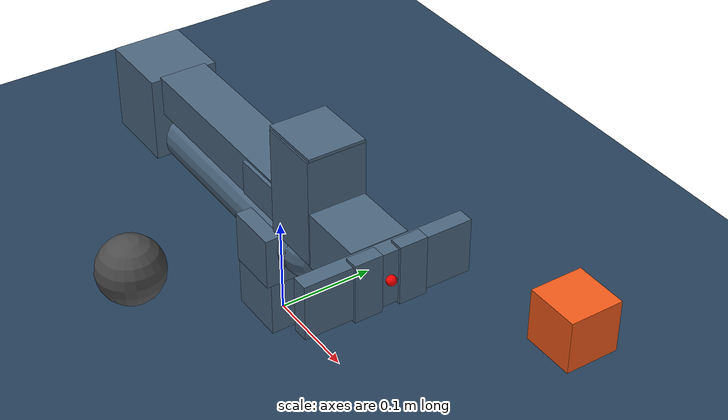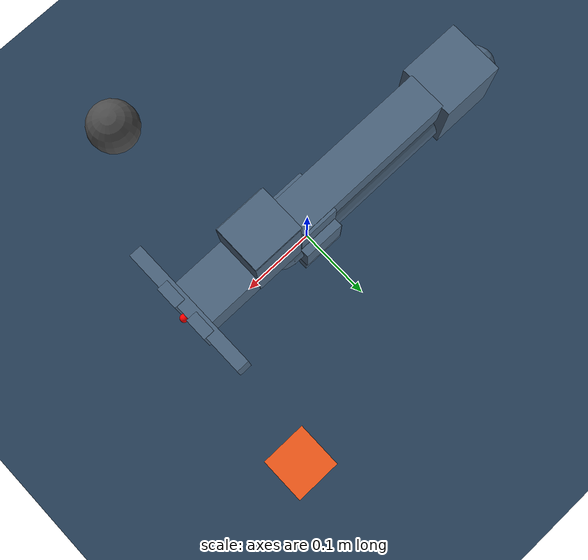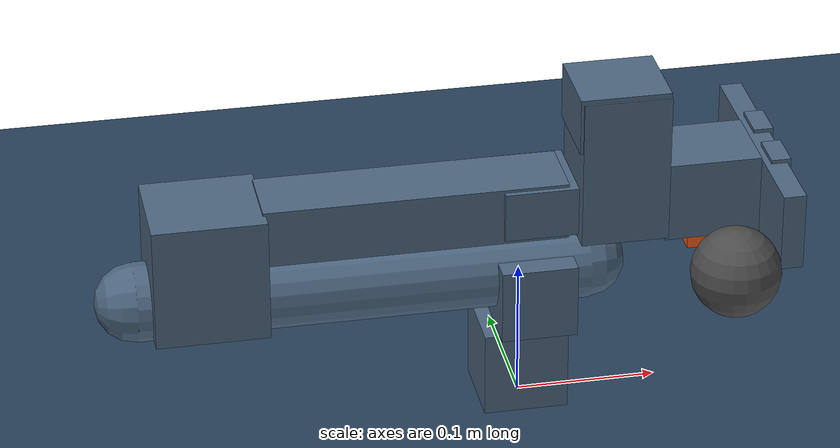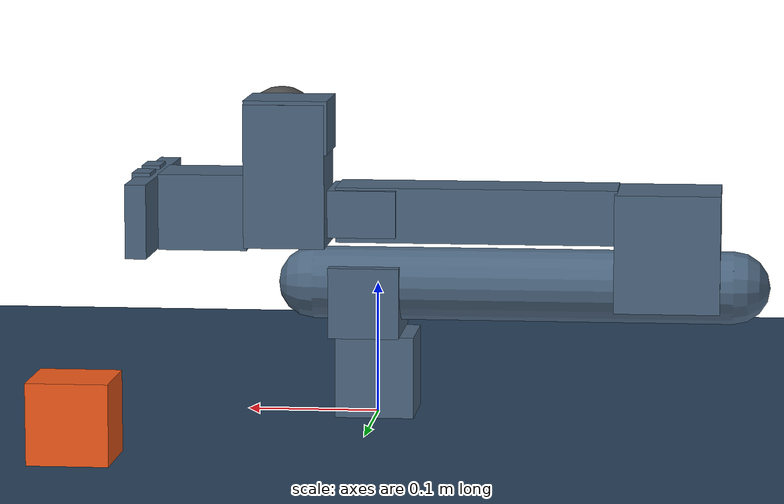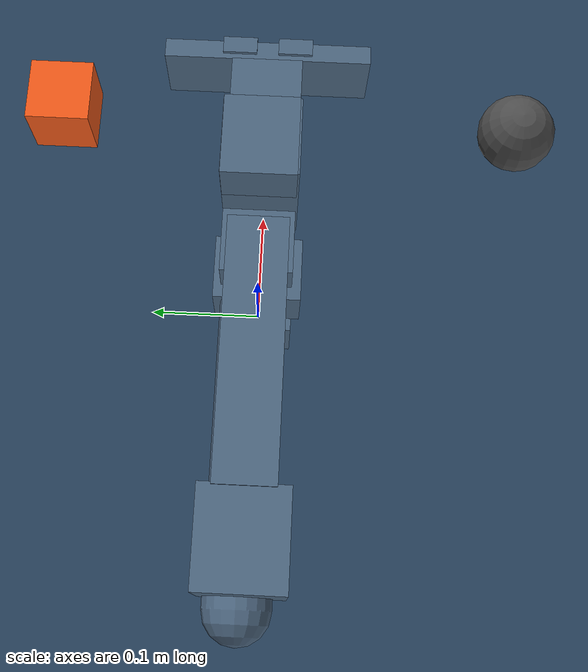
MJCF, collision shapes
<mujoco model="x5a scene">
  <include file="x5a.xml"/>

  <statistic center="0 0 0.22" extent="0.55" meansize="0.05"/>

  <visual>
    <headlight diffuse="0.6 0.6 0.6" ambient="0.1 0.1 0.1" specular="0 0 0"/>
    <rgba haze="0.15 0.25 0.35 1"/><!-- 给远景添加淡蓝色薄雾 -->
    <global azimuth="120" elevation="-20"/>
  </visual>

  <asset>
    <!-- 天空材质 -->
    <texture type="skybox" builtin="gradient" rgb1="0.3 0.5 0.7" rgb2="0 0 0" width="512" height="3072"/>
    <!-- 地面纹理 -->
    <texture name="grid" type="2d" builtin="checker" rgb1="0.2 0.3 0.4" rgb2="0.1 0.2 0.3" width="300" height="300"
      mark="cross" markrgb=".8 .8 .8"/>
    <material name="grid" texture="grid" texrepeat="5 5" texuniform="true" reflectance="0.2"/>
  </asset>

  <worldbody>
    <light pos="0 0 1.5" dir="0 0 -1" directional="true"/>
    <geom name="floor" size="0 0 0.01" type="plane" material="grid"/>
<!-- 障碍物-球体 -->
    <geom name="wall" size="0.03" type="sphere" pos="0.1 -0.2 0.2" contype="1" conaffinity="1" material="grid" rgba="0.3 0.3 0.30 0.8"/>

    <body name="target" pos="0.2 0.2 0.03">
      <freejoint name="target_free"/>
      <geom type="box" size=".03 .03 .03" rgba="0.95 0.35 0.10 1" mass="0.1" condim="4" friction="1.0 0.215 0.0222"/>
    </body>
  </worldbody>
</mujoco>

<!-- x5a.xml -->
<mujoco model="x5a">
  <compiler angle="radian" meshdir="assets" autolimits="true"/>

  <option integrator="implicitfast"/>

  <default>
    <default class="x5a">
      <geom type="mesh" contype="0" conaffinity="0" group="2"/>
      <joint damping="1" armature="0.01"/>
      <default class="position">
        <position kp="2000" kv="100" ctrlrange="-3.14 3.14" forcerange="-100 100"/>
      </default>
      <default class="position_gripper">
        <position kp="500" kv="25" ctrlrange="0 0.044" forcerange="-50 50"/>
      </default>
    </default>
  </default>

  <asset>
    <material name="gray" rgba="0.75294 0.75294 0.75294 1"/>
    <material name="link1_blue" rgba="0.79216 0.81961 0.93333 1"/>
    <material name="link3_white" rgba="1 0.98431 0.96471 1"/>
    <material name="link4_blue" rgba="0.79216 0.81961 0.92941 1"/>
    <material name="link5_gray" rgba="0.69804 0.69804 0.69804 1"/>
    <material name="link6_light" rgba="0.89804 0.91765 0.92941 1"/>
    <material name="white" rgba="1 1 1 1"/>

    <mesh file="base_link.STL"/>
    <mesh file="link1.STL"/>
    <mesh file="link2.STL"/>
    <mesh file="link3.STL"/>
    <mesh file="link4.STL"/>
    <mesh file="link5.STL"/>
    <mesh file="link6.STL"/>
    <mesh file="link7.STL"/>
    <mesh file="link8.STL"/>
  </asset>

  <worldbody>
    <body name="base_link" childclass="x5a">
      <inertial mass="0.43995" pos="-3.0001e-05 3.0589e-05 0.027324"
        fullinertia="0.00017 0.00017 0.00016 0 0 0"/>
      <geom mesh="base_link" material="gray"/>
      <geom name="base_link_collision" type="box" group="3" contype="1" conaffinity="1"
        size="0.03 0.03 0.03125" pos="0 0 0.03125" rgba="0.3 0.4 0.5 0.4"/>

      <body name="link1" pos="0 0 0.0605">
        <inertial mass="0.066982" pos="0.0054231 -0.0080289 0.017086"
          fullinertia="0.00008 0.00003 0.00008 0 0.00001 0"/>
        <joint name="joint1" type="hinge" axis="0 0 1" range="-3.14 3.14"/>
        <geom mesh="link1" material="link1_blue"/>
        <geom name="link1_collision" type="box" group="3" contype="1" conaffinity="1"
          size="0.027 0.037 0.027" pos="0.0078 0 0.0287" rgba="0.3 0.4 0.5 0.4"/>

        <body name="link2" pos="0.02 0 0.04">
          <inertial mass="1.0795" pos="-0.13237 0.0020852 0.00010549"
            fullinertia="0.00051 0.01599 0.01605 0.00001 -0.00004 0"/>
          <joint name="joint2" type="hinge" axis="0 1 0" range="0 3.14"/>
          <geom mesh="link2" material="gray"/>
          <geom name="link2_collision" type="capsule" group="3" contype="1" conaffinity="1"
            fromto="-0.292 0.003 0 0.028 0.003 0" size="0.028" rgba="0.3 0.4 0.5 0.4"/>

          <body name="link3" pos="-0.264 0 0" euler="3.1416 0 0">
            <inertial mass="0.54534" pos="0.18531 0.00068376 -0.051638"
              fullinertia="0.00036 0.00423 0.00420 -0.00003 -0.00039 0.00001"/>
            <joint name="joint3" type="hinge" axis="0 1 0" range="-0 3.14"/>
            <geom mesh="link3" material="link3_white"/>
            <geom name="link3_collision" type="box" group="3" contype="1" conaffinity="1"
              size="0.107 0.025 0.021" pos="0.167 0 -0.055" rgba="0.3 0.4 0.5 0.4"/>
            <geom name="link3_housing_collision" type="box" group="3" contype="1" conaffinity="1"
              size="0.04 0.036 0.045" pos="0.022 0 -0.029" rgba="0.3 0.4 0.5 0.4"/>

            <body name="link4" pos="0.245 0 -0.056">
              <inertial mass="0.11714" pos="0.040231 0.0044807 -0.035335"
                fullinertia="0.00019 0.00023 0.00014 -0.00002 -0.00009 0.00002"/>
              <joint name="joint4" type="hinge" axis="0 1 0" range="-1.57 1.57"/>
              <geom mesh="link4" material="link4_blue"/>
              <geom name="link4_collision" type="box" group="3" contype="1" conaffinity="1"
                size="0.026 0.029 0.018" pos="0.009 0 0" rgba="0.3 0.4 0.5 0.4"/>
              <geom name="link4_housing_collision" type="box" group="3" contype="1" conaffinity="1"
                size="0.032 0.029 0.0205" pos="0.067 0 -0.0655" rgba="0.3 0.4 0.5 0.4"/>

              <body name="link5" pos="0.06775 0.0005 -0.0865">
                <inertial mass="0.63488" pos="0.003612 -1.5455e-05 0.055214"
                  fullinertia="0.00083 0.00082 0.00026 0 0.00007 0"/>
                <joint name="joint5" type="hinge" axis="0 0 1" range="-1.57 1.57"/>
                <geom mesh="link5" material="link5_gray"/>
                <geom name="link5_collision" type="box" group="3" contype="1" conaffinity="1"
                  size="0.031 0.030 0.055" pos="0.0005 0 0.0585" rgba="0.3 0.4 0.5 0.4"/>

                <body name="link6" pos="0.02895 0 0.0865" euler="-3.1416 0 0">
                  <inertial mass="0.44089" pos="0.041697 2.4368e-05 0.00014464"
                    fullinertia="0.00038 0.00028 0.00050 0 0 0"/>
                  <joint name="joint6" type="hinge" axis="1 0 0" range="-3.14 3.14"/>
                  <geom mesh="link6" material="link6_light"/>
                  <!-- site：夹爪的作用点相对位置 -->
                  <site name="attachment_site" pos="0.08657 0 0" size="0.005" rgba="1 0 0 1"/>
                  <geom name="link6_collision" type="box" group="3" contype="1" conaffinity="1"
                    size="0.034 0.029 0.029" pos="0.034 0 0" rgba="0.3 0.4 0.5 0.4"/>
                  <geom name="link6_bracket_collision" type="box" group="3" contype="1" conaffinity="1"
                    size="0.008 0.085 0.028" pos="0.076 0 0" rgba="0.3 0.4 0.5 0.4"/>

                  <body name="link7" pos="0.08657 0.024896 -0.0002436">
                    <inertial mass="0.064798" pos="-0.00035522 -0.007827 -0.0029883"
                      fullinertia="0.00002 0.00003 0.00003 0 0 0"/>
                    <joint name="joint7" type="slide" axis="0 1 0" range="0 0.044"/>
                    <geom mesh="link7" material="white"/>
                    <geom name="link7_collision" type="box" group="3" contype="1" conaffinity="1"
                      size="0.007 0.014 0.0305" pos="-0.007 -0.002 0.0005" rgba="0.3 0.4 0.5 0.4"
                      friction="2 0.5 0.01"/>
                  </body>

                  <body name="link8" pos="0.08657 -0.0249 -0.00024366">
                    <inertial mass="0.064798" pos="-0.00035522 0.0078277 0.0024201"
                      fullinertia="0.00002 0.00003 0.00003 0 0 0"/>
                    <joint name="joint8" type="slide" axis="0 -1 0" range="0 0.044"/>
                    <geom mesh="link8" material="white"/>
                    <geom name="link8_collision" type="box" group="3" contype="1" conaffinity="1"
                      size="0.007 0.014 0.0305" pos="-0.007 0.002 0.0005" rgba="0.3 0.4 0.5 0.4"
                      friction="2 0.5 0.01"/>
                  </body>
                </body>
              </body>
            </body>
          </body>
        </body>
      </body>
    </body>
  </worldbody>

  <contact>
    <exclude body1="base_link" body2="link1"/>
    <exclude body1="base_link" body2="link2"/>
    <exclude body1="link1" body2="link2"/>
    <exclude body1="link2" body2="link3"/>
    <exclude body1="link3" body2="link4"/>
    <exclude body1="link4" body2="link5"/>
    <exclude body1="link5" body2="link6"/>
    <exclude body1="link6" body2="link7"/>
    <exclude body1="link6" body2="link8"/>
    <exclude body1="link7" body2="link8"/>
  </contact>

  <actuator>
    <position class="position" name="joint1" joint="joint1"/>
    <position class="position" name="joint2" joint="joint2"/>
    <position class="position" name="joint3" joint="joint3"/>
    <position class="position" name="joint4" joint="joint4"/>
    <position class="position" name="joint5" joint="joint5"/>
    <position class="position" name="joint6" joint="joint6"/>
    <position class="position_gripper" name="joint7" joint="joint7"/>
    <position class="position_gripper" name="joint8" joint="joint8"/>
  </actuator>

  <keyframe>
    <key name="home" qpos="0 0 0 0 0 0 0 0" ctrl="0 0 0 0 0 0 0 0"/>
  </keyframe>
</mujoco>
